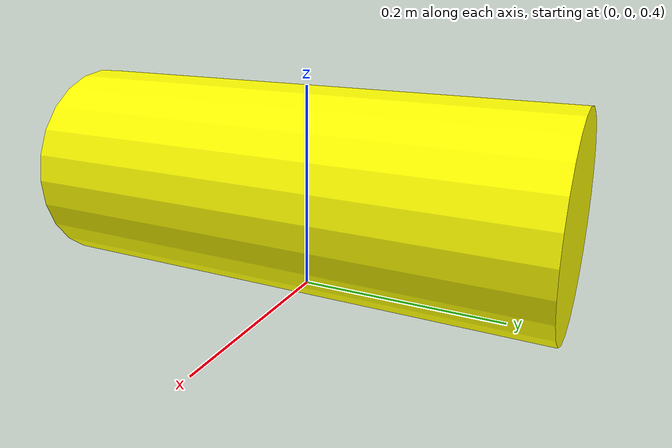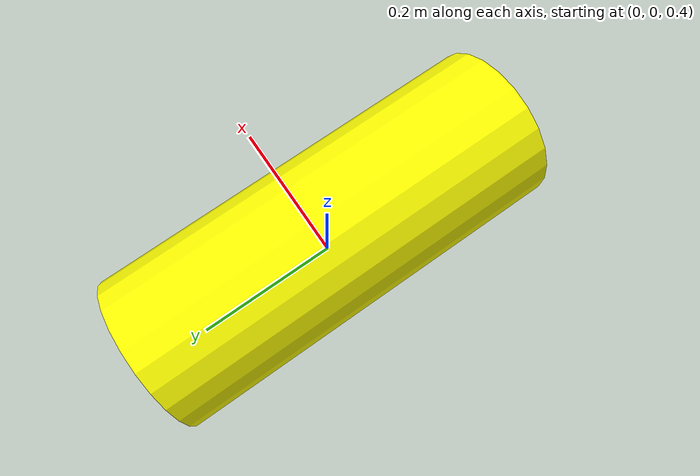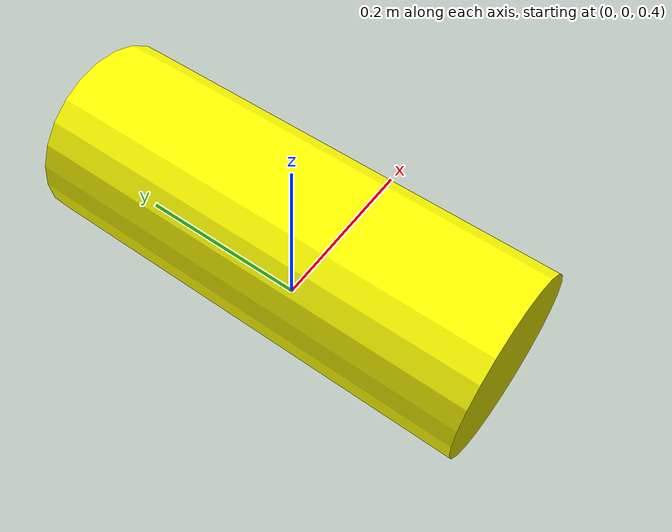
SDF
<?xml version="1.0"?>
<sdf version='1.9'>
  <world name='shapes'>
    <physics name='1ms' type='ignored'>
      <max_step_size>0.001</max_step_size>
      <real_time_factor>1</real_time_factor>
      <real_time_update_rate>1000</real_time_update_rate>
    </physics>
    <plugin name='gz::sim::systems::Physics' filename='ignition-gazebo-physics-system'/>
    <plugin name='gz::sim::systems::UserCommands' filename='ignition-gazebo-user-commands-system'/>
    <plugin name='gz::sim::systems::SceneBroadcaster' filename='ignition-gazebo-scene-broadcaster-system'/>
    <gravity>0 0 -9.8</gravity>
    <magnetic_field>6e-06 2.3e-05 -4.2e-05</magnetic_field>
    <atmosphere type='adiabatic'/>
    <scene>
      <ambient>0.4 0.4 0.4 1</ambient>
      <background>0.7 0.7 0.7 1</background>
      <shadows>true</shadows>
    </scene>
    <model name='pendulum'>
      <pose>0 0 0.5 1.57 -0 0</pose>
      <link name='link'>
        <inertial>
          <inertia>
            <ixx>1</ixx>
            <ixy>0</ixy>
            <ixz>0</ixz>
            <iyy>1</iyy>
            <iyz>0</iyz>
            <izz>1</izz>
          </inertia>
          <mass>1</mass>
          <pose>0 0 0 0 -0 0</pose>
        </inertial>
        <collision name='collision'>
          <geometry>
            <cylinder>
              <radius>0.10000000000000001</radius>
              <length>0.5</length>
            </cylinder>
          </geometry>
          <surface>
            <friction>
              <ode/>
            </friction>
            <bounce/>
            <contact/>
          </surface>
        </collision>
        <visual name='visual'>
          <geometry>
            <cylinder>
              <radius>0.10000000000000001</radius>
              <length>0.5</length>
            </cylinder>
          </geometry>
          <material>
            <ambient>1 1 0 1</ambient>
            <diffuse>1 1 0 1</diffuse>
            <specular>1 1 0 1</specular>
          </material>
        </visual>
        <pose>0 0 0 0 -0 0</pose>
        <enable_wind>false</enable_wind>
      </link>
      <joint name='world_joint' type='revolute'>
        <pose>0 0 0.25 0 -0 0</pose>
        <parent>world</parent>
        <child>link</child>
        <axis>
          <xyz>1 0 0</xyz>
          <limit>
            <lower>-10000000000000000</lower>
            <upper>10000000000000000</upper>
            <effort>inf</effort>
            <velocity>inf</velocity>
            <stiffness>100000000</stiffness>
            <dissipation>1</dissipation>
          </limit>
          <dynamics>
            <spring_reference>0</spring_reference>
            <spring_stiffness>0</spring_stiffness>
            <damping>0</damping>
            <friction>0</friction>
          </dynamics>
        </axis>
      </joint>
      <static>false</static>
      <self_collide>false</self_collide>
    </model>
    <light name='sun' type='directional'>
      <pose>0 0 10 0 -0 0</pose>
      <cast_shadows>true</cast_shadows>
      <intensity>1</intensity>
      <direction>-0.5 0.1 -0.9</direction>
      <diffuse>0.8 0.8 0.8 1</diffuse>
      <specular>0.2 0.2 0.2 1</specular>
      <attenuation>
        <range>1000</range>
        <linear>0.01</linear>
        <constant>0.90000000000000002</constant>
        <quadratic>0.001</quadratic>
      </attenuation>
      <spot>
        <inner_angle>0</inner_angle>
        <outer_angle>0</outer_angle>
        <falloff>0</falloff>
      </spot>
    </light>
  </world>
</sdf>
